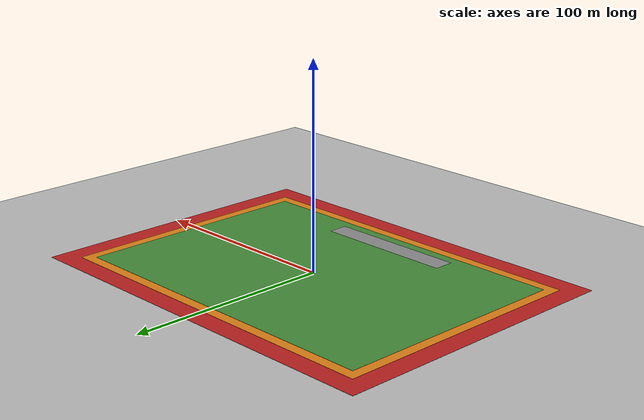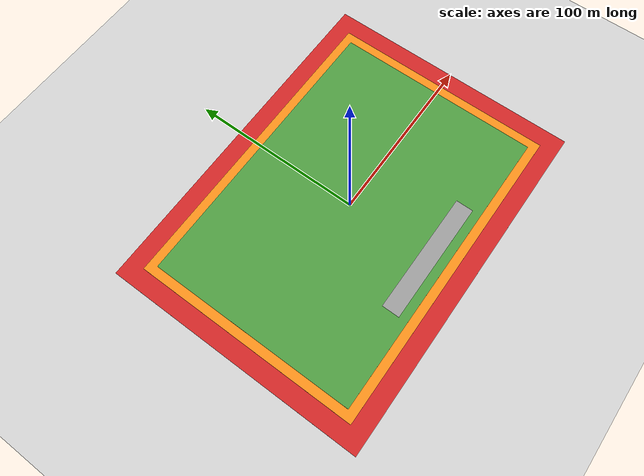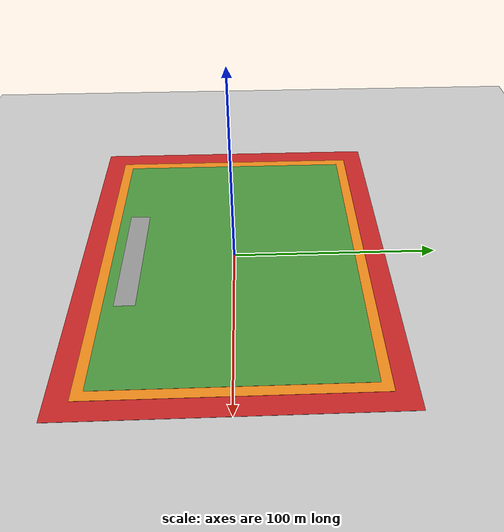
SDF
<?xml version="1.0" encoding="UTF-8" ?>

<sdf version="1.5">
	<world name="default">
		<!-- A global light source -->
		<include>
			<uri>model://sun</uri>
		</include>

		<!-- A ground plane -->
		<include>
			<uri>model://ground_plane</uri>
		</include>

		<!-- Teknofest Ground -->
		<include>
			<uri>model://teknofest_ground</uri>
			<pose>0 0 0 0 0 0</pose>
		</include>
	</world>
</sdf>

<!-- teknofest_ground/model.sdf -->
<sdf version="1.5">

  <model name="teknofest_ground">

    <static>true</static>

    <link name="flyzone">
      <collision name="flyzone_collision">
        <geometry>
          <plane>
            <normal>0 0 1</normal>
            <size>170 120</size>
          </plane>
        </geometry>
        <surface>
          <friction>
            <ode>
              <mu>100</mu>
              <mu2>50</mu2>
            </ode>
          </friction>
        </surface>
      </collision>
      <visual name="flyzone_visual">
        <pose>0 0 0 0 0 0</pose>
        <geometry>
          <plane>
            <normal>0 0 1</normal>
            <size>170 120</size>
          </plane>
        </geometry>
        <material>
          <script>
            <uri>file://media/materials/scripts/gazebo.material</uri>
            <name>Gazebo/Grass</name>
          </script>
        </material>
      </visual>
    </link>

    <link name="bufferzone">
      <collision name="bufferzone_collision">
        <geometry>
          <plane>
            <normal>0 0 1</normal>
            <size>180 130</size>
          </plane>
        </geometry>
        <surface>
          <friction>
            <ode>
              <mu>100</mu>
              <mu2>50</mu2>
            </ode>
          </friction>
        </surface>
      </collision>
      <visual name="bufferzone_visual">
        <pose>0 0 -0.1 0 0 0</pose>
        <geometry>
          <plane>
            <normal>0 0 1</normal>
            <size>180 130</size>
          </plane>
        </geometry>
        <material>
          <script>
            <uri>file://media/materials/scripts/gazebo.material</uri>
            <name>Gazebo/Orange</name>
          </script>
        </material>
      </visual>
    </link>

    <link name="noflyzone">
      <collision name="noflyzone_collision">
        <geometry>
          <plane>
            <normal>0 0 1</normal>
            <size>200 150</size>
          </plane>
        </geometry>
        <surface>
          <friction>
            <ode>
              <mu>100</mu>
              <mu2>50</mu2>
            </ode>
          </friction>
        </surface>
      </collision>
      <visual name="noflyzone_visual">
        <pose>0 0 -0.2 0 0 0</pose>
        <geometry>
          <plane>
            <normal>0 0 1</normal>
            <size>200 150</size>
          </plane>
        </geometry>
        <material>
          <script>
            <uri>file://media/materials/scripts/gazebo.material</uri>
            <name>Gazebo/Red</name>
          </script>
        </material>
      </visual>
    </link>

   <link name="takeoffzone">
      <collision name="takeoffzone_collision">
        <geometry>
          <plane>
            <normal>0 0 1</normal>
            <size>70 10</size>
          </plane>
        </geometry>
        <surface>
          <friction>
            <ode>
              <mu>100</mu>
              <mu2>50</mu2>
            </ode>
          </friction>
        </surface>
      </collision>
      <visual name="takeoffzone_visual">
        <pose>0 -50 0.1 0 0 0</pose>
        <geometry>
          <plane>
            <normal>0 0 1</normal>
            <size>70 10</size>
          </plane>
        </geometry>
        <material>
          <script>
            <uri>file://media/materials/scripts/gazebo.material</uri>
            <name>Gazebo/Grey</name>
          </script>
        </material>
      </visual>
    </link>

  </model>
</sdf>
